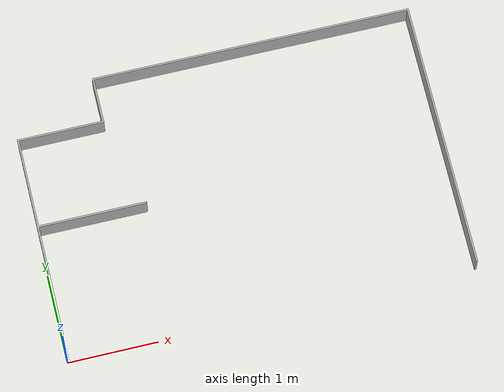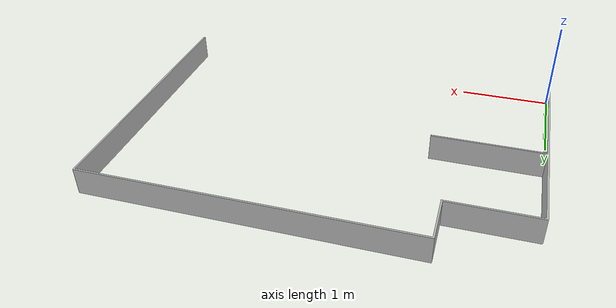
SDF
<?xml version="1.0"?>
<sdf version="1.6">
  <model name="my_map">
    <static>true</static>
    <link name="map_link">

      <visual name="map_visual">
        <geometry>
          <mesh>
            <uri>model://my_map/meshes/Project_map.stl</uri>
            <scale>0.001 0.001 0.001</scale>  <!-- Scaled down from solidworks -->
          </mesh>
        </geometry>
      </visual>

      <collision name="map_collision">
        <geometry>
          <mesh>
            <uri>model://my_map/meshes/Project_map.stl</uri>
            <scale>0.001 0.001 0.001</scale>
          </mesh>
        </geometry>
      </collision>

    </link>
  </model>
</sdf>
